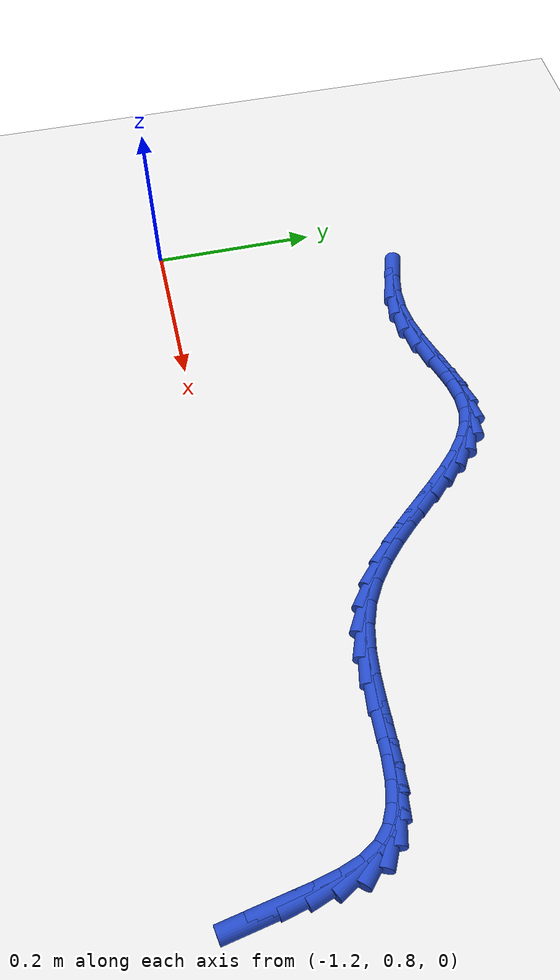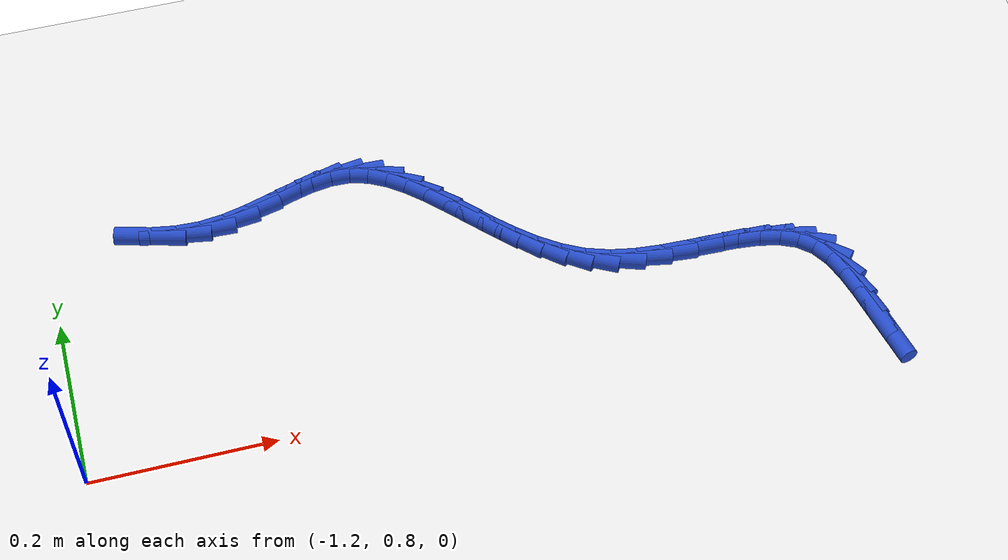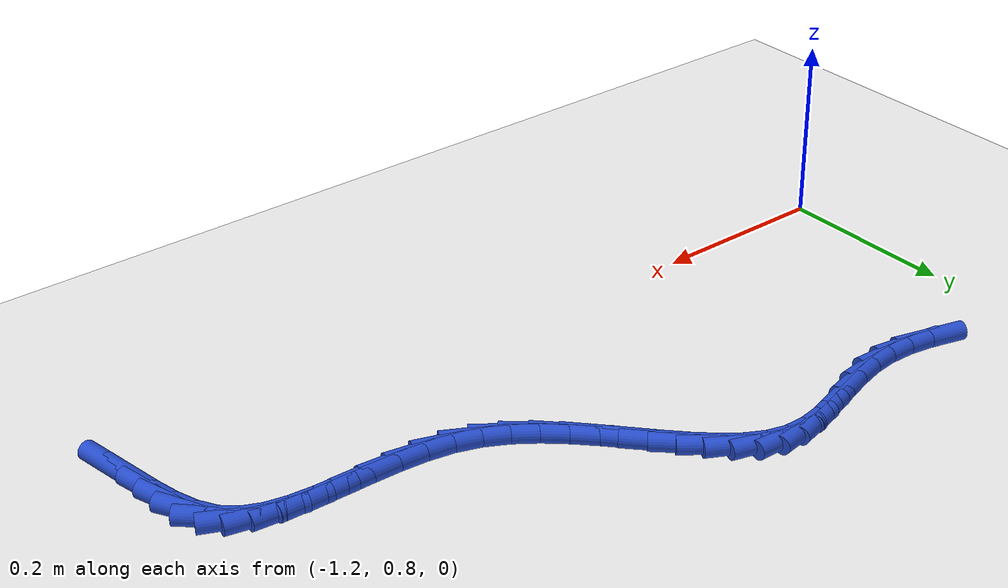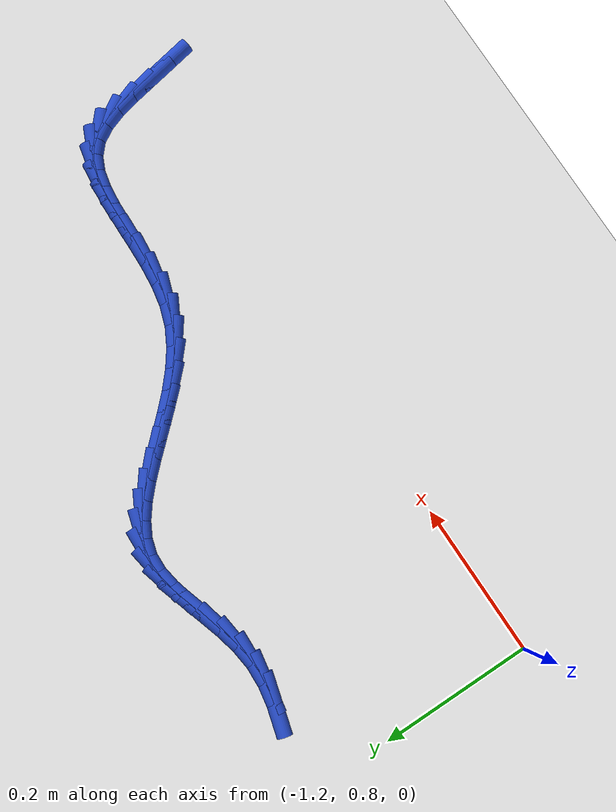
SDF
<sdf version="1.6">
 <world name="default">
  <model name="ground_plane">
   <static>1</static>
   <link name="link">
    <collision name="collision">
     <geometry><plane><normal>0 0 1</normal><size>100 100</size></plane></geometry>
     <surface><friction><ode><mu>100</mu><mu2>50</mu2></ode></friction></surface>
    </collision>
    <visual name="visual">
     <cast_shadows>0</cast_shadows>
     <geometry><plane><normal>0 0 1</normal><size>100 100</size></plane></geometry>
     <material>
      <script><uri>file://media/materials/scripts/gazebo.material</uri><name>Gazebo/WhiteGlow</name></script>
     </material>
    </visual>
   </link>
  </model>
  <model name="line">
   <link name="link_33">
    <pose>-0.34288964337292827 0.7623112245868207 0.01 0 1.57 -1.3906862748614424</pose>
    <collision name="collision">
     <geometry><cylinder><radius>0.01</radius><length>0.08</length></cylinder></geometry>
    </collision>
    <visual name="visual">
     <material>
      <script><name>Gazebo/Blue</name><uri>file://media/materials/scripts/gazebo.material</uri></script>
     </material>
     <geometry><cylinder><radius>0.01</radius><length>0.08</length></cylinder></geometry>
    </visual>
   </link>
   <link name="link_34">
    <pose>-0.3480462112570807 0.7906310646843723 0.01 0 1.57 -1.3924642275761425</pose>
    <collision name="collision">
     <geometry><cylinder><radius>0.01</radius><length>0.08</length></cylinder></geometry>
    </collision>
    <visual name="visual">
     <material>
      <script><name>Gazebo/Blue</name><uri>file://media/materials/scripts/gazebo.material</uri></script>
     </material>
     <geometry><cylinder><radius>0.01</radius><length>0.08</length></cylinder></geometry>
    </visual>
   </link>
   <link name="link_35">
    <pose>-0.3530417143281931 0.8183458409422699 0.01 0 1.57 -1.345507917384217</pose>
    <collision name="collision">
     <geometry><cylinder><radius>0.01</radius><length>0.08</length></cylinder></geometry>
    </collision>
    <visual name="visual">
     <material>
      <script><name>Gazebo/Blue</name><uri>file://media/materials/scripts/gazebo.material</uri></script>
     </material>
     <geometry><cylinder><radius>0.01</radius><length>0.08</length></cylinder></geometry>
    </visual>
   </link>
   <link name="link_36">
    <pose>-0.35899050592612103 0.8443028177778186 0.01 0 1.57 -1.236048659714106</pose>
    <collision name="collision">
     <geometry><cylinder><radius>0.01</radius><length>0.08</length></cylinder></geometry>
    </collision>
    <visual name="visual">
     <material>
      <script><name>Gazebo/Blue</name><uri>file://media/materials/scripts/gazebo.material</uri></script>
     </material>
     <geometry><cylinder><radius>0.01</radius><length>0.08</length></cylinder></geometry>
    </visual>
   </link>
   <link name="link_37">
    <pose>-0.3670069393907203 0.8673492596083233 0.01 0 1.57 -1.0378263958449676</pose>
    <collision name="collision">
     <geometry><cylinder><radius>0.01</radius><length>0.08</length></cylinder></geometry>
    </collision>
    <visual name="visual">
     <material>
      <script><name>Gazebo/Blue</name><uri>file://media/materials/scripts/gazebo.material</uri></script>
     </material>
     <geometry><cylinder><radius>0.01</radius><length>0.08</length></cylinder></geometry>
    </visual>
   </link>
   <link name="link_38">
    <pose>-0.37820536806184657 0.8863324308510889 0.01 0 1.57 -0.7340887255613944</pose>
    <collision name="collision">
     <geometry><cylinder><radius>0.01</radius><length>0.08</length></cylinder></geometry>
    </collision>
    <visual name="visual">
     <material>
      <script><name>Gazebo/Blue</name><uri>file://media/materials/scripts/gazebo.material</uri></script>
     </material>
     <geometry><cylinder><radius>0.01</radius><length>0.08</length></cylinder></geometry>
    </visual>
   </link>
   <link name="link_39">
    <pose>-0.39359885136773926 0.9002220925349297 0.01 0 1.57 -0.4350780117372672</pose>
    <collision name="collision">
     <geometry><cylinder><radius>0.01</radius><length>0.08</length></cylinder></geometry>
    </collision>
    <visual name="visual">
     <material>
      <script><name>Gazebo/Blue</name><uri>file://media/materials/scripts/gazebo.material</uri></script>
     </material>
     <geometry><cylinder><radius>0.01</radius><length>0.08</length></cylinder></geometry>
    </visual>
   </link>
   <link name="link_40">
    <pose>-0.4131196720460522 0.9092950090443633 0.01 0 1.57 -0.22816482422314488</pose>
    <collision name="collision">
     <geometry><cylinder><radius>0.01</radius><length>0.08</length></cylinder></geometry>
    </collision>
    <visual name="visual">
     <material>
      <script><name>Gazebo/Blue</name><uri>file://media/materials/scripts/gazebo.material</uri></script>
     </material>
     <geometry><cylinder><radius>0.01</radius><length>0.08</length></cylinder></geometry>
    </visual>
   </link>
   <link name="link_41">
    <pose>-0.436046194566393 0.9146187402891426 0.01 0 1.57 -0.10326282881329502</pose>
    <collision name="collision">
     <geometry><cylinder><radius>0.01</radius><length>0.08</length></cylinder></geometry>
    </collision>
    <visual name="visual">
     <material>
      <script><name>Gazebo/Blue</name><uri>file://media/materials/scripts/gazebo.material</uri></script>
     </material>
     <geometry><cylinder><radius>0.01</radius><length>0.08</length></cylinder></geometry>
    </visual>
   </link>
   <link name="link_42">
    <pose>-0.4616476769722693 0.9172718587494932 0.01 0 1.57 -0.03850160956379193</pose>
    <collision name="collision">
     <geometry><cylinder><radius>0.01</radius><length>0.08</length></cylinder></geometry>
    </collision>
    <visual name="visual">
     <material>
      <script><name>Gazebo/Blue</name><uri>file://media/materials/scripts/gazebo.material</uri></script>
     </material>
     <geometry><cylinder><radius>0.01</radius><length>0.08</length></cylinder></geometry>
    </visual>
   </link>
   <link name="link_43">
    <pose>-0.4891933773071892 0.9183329369056399 0.01 0 1.57 -0.019038937644648587</pose>
    <collision name="collision">
     <geometry><cylinder><radius>0.01</radius><length>0.08</length></cylinder></geometry>
    </collision>
    <visual name="visual">
     <material>
      <script><name>Gazebo/Blue</name><uri>file://media/materials/scripts/gazebo.material</uri></script>
     </material>
     <geometry><cylinder><radius>0.01</radius><length>0.08</length></cylinder></geometry>
    </visual>
   </link>
   <link name="link_44">
    <pose>-0.517952553614661 0.9188805472378087 0.01 0 1.57 -0.03803371212145451</pose>
    <collision name="collision">
     <geometry><cylinder><radius>0.01</radius><length>0.08</length></cylinder></geometry>
    </collision>
    <visual name="visual">
     <material>
      <script><name>Gazebo/Blue</name><uri>file://media/materials/scripts/gazebo.material</uri></script>
     </material>
     <geometry><cylinder><radius>0.01</radius><length>0.08</length></cylinder></geometry>
    </visual>
   </link>
   <link name="link_45">
    <pose>-0.5471944639381919 0.9199932622262242 0.01 0 1.57 -0.09478313095866771</pose>
    <collision name="collision">
     <geometry><cylinder><radius>0.01</radius><length>0.08</length></cylinder></geometry>
    </collision>
    <visual name="visual">
     <material>
      <script><name>Gazebo/Blue</name><uri>file://media/materials/scripts/gazebo.material</uri></script>
     </material>
     <geometry><cylinder><radius>0.01</radius><length>0.08</length></cylinder></geometry>
    </visual>
   </link>
   <link name="link_46">
    <pose>-0.5761883663212908 0.9227496543511126 0.01 0 1.57 -0.19312265586813135</pose>
    <collision name="collision">
     <geometry><cylinder><radius>0.01</radius><length>0.08</length></cylinder></geometry>
    </collision>
    <visual name="visual">
     <material>
      <script><name>Gazebo/Blue</name><uri>file://media/materials/scripts/gazebo.material</uri></script>
     </material>
     <geometry><cylinder><radius>0.01</radius><length>0.08</length></cylinder></geometry>
    </visual>
   </link>
   <link name="link_47">
    <pose>-0.6042035188074648 0.9282282960926986 0.01 0 1.57 -0.3383980068140878</pose>
    <collision name="collision">
     <geometry><cylinder><radius>0.01</radius><length>0.08</length></cylinder></geometry>
    </collision>
    <visual name="visual">
     <material>
      <script><name>Gazebo/Blue</name><uri>file://media/materials/scripts/gazebo.material</uri></script>
     </material>
     <geometry><cylinder><radius>0.01</radius><length>0.08</length></cylinder></geometry>
    </visual>
   </link>
   <link name="link_48">
    <pose>-0.6305188542791111 0.9374895954475316 0.01 0 1.57 -0.5010439191679373</pose>
    <collision name="collision">
     <geometry><cylinder><radius>0.01</radius><length>0.08</length></cylinder></geometry>
    </collision>
    <visual name="visual">
     <material>
      <script><name>Gazebo/Blue</name><uri>file://media/materials/scripts/gazebo.material</uri></script>
     </material>
     <geometry><cylinder><radius>0.01</radius><length>0.08</length></cylinder></geometry>
    </visual>
   </link>
   <link name="link_49">
    <pose>-0.6548332208401827 0.9508055707267604 0.01 0 1.57 -0.6329286771304352</pose>
    <collision name="collision">
     <geometry><cylinder><radius>0.01</radius><length>0.08</length></cylinder></geometry>
    </collision>
    <visual name="visual">
     <material>
      <script><name>Gazebo/Blue</name><uri>file://media/materials/scripts/gazebo.material</uri></script>
     </material>
     <geometry><cylinder><radius>0.01</radius><length>0.08</length></cylinder></geometry>
    </visual>
   </link>
   <link name="link_50">
    <pose>-0.6774177401152314 0.96737379826443 0.01 0 1.57 -0.7299570894741478</pose>
    <collision name="collision">
     <geometry><cylinder><radius>0.01</radius><length>0.08</length></cylinder></geometry>
    </collision>
    <visual name="visual">
     <material>
      <script><name>Gazebo/Blue</name><uri>file://media/materials/scripts/gazebo.material</uri></script>
     </material>
     <geometry><cylinder><radius>0.01</radius><length>0.08</length></cylinder></geometry>
    </visual>
   </link>
   <link name="link_51">
    <pose>-0.6985845985600144 0.9863147552857819 0.01 0 1.57 -0.7946033513987176</pose>
    <collision name="collision">
     <geometry><cylinder><radius>0.01</radius><length>0.08</length></cylinder></geometry>
    </collision>
    <visual name="visual">
     <material>
      <script><name>Gazebo/Blue</name><uri>file://media/materials/scripts/gazebo.material</uri></script>
     </material>
     <geometry><cylinder><radius>0.01</radius><length>0.08</length></cylinder></geometry>
    </visual>
   </link>
   <link name="link_52">
    <pose>-0.7186459826302888 1.0067489190160561 0.01 0 1.57 -0.8295146238784223</pose>
    <collision name="collision">
     <geometry><cylinder><radius>0.01</radius><length>0.08</length></cylinder></geometry>
    </collision>
    <visual name="visual">
     <material>
      <script><name>Gazebo/Blue</name><uri>file://media/materials/scripts/gazebo.material</uri></script>
     </material>
     <geometry><cylinder><radius>0.01</radius><length>0.08</length></cylinder></geometry>
    </visual>
   </link>
   <link name="link_53">
    <pose>-0.7379140787818119 1.0277967666804937 0.01 0 1.57 -0.8357741159360251</pose>
    <collision name="collision">
     <geometry><cylinder><radius>0.01</radius><length>0.08</length></cylinder></geometry>
    </collision>
    <visual name="visual">
     <material>
      <script><name>Gazebo/Blue</name><uri>file://media/materials/scripts/gazebo.material</uri></script>
     </material>
     <geometry><cylinder><radius>0.01</radius><length>0.08</length></cylinder></geometry>
    </visual>
   </link>
   <link name="link_54">
    <pose>-0.7567010734703409 1.0485787755043354 0.01 0 1.57 -0.8120178000085374</pose>
    <collision name="collision">
     <geometry><cylinder><radius>0.01</radius><length>0.08</length></cylinder></geometry>
    </collision>
    <visual name="visual">
     <material>
      <script><name>Gazebo/Blue</name><uri>file://media/materials/scripts/gazebo.material</uri></script>
     </material>
     <geometry><cylinder><radius>0.01</radius><length>0.08</length></cylinder></geometry>
    </visual>
   </link>
   <link name="link_55">
    <pose>-0.7753191531516332 1.068215422712822 0.01 0 1.57 -0.7538032395687636</pose>
    <collision name="collision">
     <geometry><cylinder><radius>0.01</radius><length>0.08</length></cylinder></geometry>
    </collision>
    <visual name="visual">
     <material>
      <script><name>Gazebo/Blue</name><uri>file://media/materials/scripts/gazebo.material</uri></script>
     </material>
     <geometry><cylinder><radius>0.01</radius><length>0.08</length></cylinder></geometry>
    </visual>
   </link>
   <link name="link_56">
    <pose>-0.7940805042814458 1.085827185531194 0.01 0 1.57 -0.653245426393471</pose>
    <collision name="collision">
     <geometry><cylinder><radius>0.01</radius><length>0.08</length></cylinder></geometry>
    </collision>
    <visual name="visual">
     <material>
      <script><name>Gazebo/Blue</name><uri>file://media/materials/scripts/gazebo.material</uri></script>
     </material>
     <geometry><cylinder><radius>0.01</radius><length>0.08</length></cylinder></geometry>
    </visual>
   </link>
   <link name="link_57">
    <pose>-0.813297313315536 1.1005345411846925 0.01 0 1.57 -0.5002261512844658</pose>
    <collision name="collision">
     <geometry><cylinder><radius>0.01</radius><length>0.08</length></cylinder></geometry>
    </collision>
    <visual name="visual">
     <material>
      <script><name>Gazebo/Blue</name><uri>file://media/materials/scripts/gazebo.material</uri></script>
     </material>
     <geometry><cylinder><radius>0.01</radius><length>0.08</length></cylinder></geometry>
    </visual>
   </link>
   <link name="link_58">
    <pose>-0.833281766709661 1.1114579668985582 0.01 0 1.57 -0.2888715178001583</pose>
    <collision name="collision">
     <geometry><cylinder><radius>0.01</radius><length>0.08</length></cylinder></geometry>
    </collision>
    <visual name="visual">
     <material>
      <script><name>Gazebo/Blue</name><uri>file://media/materials/scripts/gazebo.material</uri></script>
     </material>
     <geometry><cylinder><radius>0.01</radius><length>0.08</length></cylinder></geometry>
    </visual>
   </link>
   <link name="link_59">
    <pose>-0.8543460509195784 1.1177179398980324 0.01 0 1.57 -0.03962480373865633</pose>
    <collision name="collision">
     <geometry><cylinder><radius>0.01</radius><length>0.08</length></cylinder></geometry>
    </collision>
    <visual name="visual">
     <material>
      <script><name>Gazebo/Blue</name><uri>file://media/materials/scripts/gazebo.material</uri></script>
     </material>
     <geometry><cylinder><radius>0.01</radius><length>0.08</length></cylinder></geometry>
    </visual>
   </link>
   <link name="link_60">
    <pose>-0.8767658021198552 1.1186067833863966 0.01 0 1.57 0.1543996903617715</pose>
    <collision name="collision">
     <geometry><cylinder><radius>0.01</radius><length>0.08</length></cylinder></geometry>
    </collision>
    <visual name="visual">
     <material>
      <script><name>Gazebo/Blue</name><uri>file://media/materials/scripts/gazebo.material</uri></script>
     </material>
     <geometry><cylinder><radius>0.01</radius><length>0.08</length></cylinder></geometry>
    </visual>
   </link>
   <link name="link_61">
    <pose>-0.9004984145974323 1.114913076865174 0.01 0 1.57 0.26410611192535016</pose>
    <collision name="collision">
     <geometry><cylinder><radius>0.01</radius><length>0.08</length></cylinder></geometry>
    </collision>
    <visual name="visual">
     <material>
      <script><name>Gazebo/Blue</name><uri>file://media/materials/scripts/gazebo.material</uri></script>
     </material>
     <geometry><cylinder><radius>0.01</radius><length>0.08</length></cylinder></geometry>
    </visual>
   </link>
   <link name="link_62">
    <pose>-0.9253373714373765 1.1081960500164336 0.01 0 1.57 0.3075432165854948</pose>
    <collision name="collision">
     <geometry><cylinder><radius>0.01</radius><length>0.08</length></cylinder></geometry>
    </collision>
    <visual name="visual">
     <material>
      <script><name>Gazebo/Blue</name><uri>file://media/materials/scripts/gazebo.material</uri></script>
     </material>
     <geometry><cylinder><radius>0.01</radius><length>0.08</length></cylinder></geometry>
    </visual>
   </link>
   <link name="link_63">
    <pose>-0.9510747995793934 1.1000213086189083 0.01 0 1.57 0.2962557683704399</pose>
    <collision name="collision">
     <geometry><cylinder><radius>0.01</radius><length>0.08</length></cylinder></geometry>
    </collision>
    <visual name="visual">
     <material>
      <script><name>Gazebo/Blue</name><uri>file://media/materials/scripts/gazebo.material</uri></script>
     </material>
     <geometry><cylinder><radius>0.01</radius><length>0.08</length></cylinder></geometry>
    </visual>
   </link>
   <link name="link_64">
    <pose>-0.9775028259631882 1.0919544584513334 0.01 0 1.57 0.2332518977893358</pose>
    <collision name="collision">
     <geometry><cylinder><radius>0.01</radius><length>0.08</length></cylinder></geometry>
    </collision>
    <visual name="visual">
     <material>
      <script><name>Gazebo/Blue</name><uri>file://media/materials/scripts/gazebo.material</uri></script>
     </material>
     <geometry><cylinder><radius>0.01</radius><length>0.08</length></cylinder></geometry>
    </visual>
   </link>
   <link name="link_65">
    <pose>-1.004413577528466 1.0855611052924432 0.01 0 1.57 0.11552185965410673</pose>
    <collision name="collision">
     <geometry><cylinder><radius>0.01</radius><length>0.08</length></cylinder></geometry>
    </collision>
    <visual name="visual">
     <material>
      <script><name>Gazebo/Blue</name><uri>file://media/materials/scripts/gazebo.material</uri></script>
     </material>
     <geometry><cylinder><radius>0.01</radius><length>0.08</length></cylinder></geometry>
    </visual>
   </link>
   <link name="link_66">
    <pose>-1.0315991913979132 1.0824065271911665 0.01 0 1.57 -0.04093118501083047</pose>
    <collision name="collision">
     <geometry><cylinder><radius>0.01</radius><length>0.08</length></cylinder></geometry>
    </collision>
    <visual name="visual">
     <material>
      <script><name>Gazebo/Blue</name><uri>file://media/materials/scripts/gazebo.material</uri></script>
     </material>
     <geometry><cylinder><radius>0.01</radius><length>0.08</length></cylinder></geometry>
    </visual>
   </link>
   <link name="link_67">
    <pose>-1.0588683561117072 1.0835233101587076 0.01 0 1.57 -0.1747596472735226</pose>
    <collision name="collision">
     <geometry><cylinder><radius>0.01</radius><length>0.08</length></cylinder></geometry>
    </collision>
    <visual name="visual">
     <material>
      <script><name>Gazebo/Blue</name><uri>file://media/materials/scripts/gazebo.material</uri></script>
     </material>
     <geometry><cylinder><radius>0.01</radius><length>0.08</length></cylinder></geometry>
    </visual>
   </link>
   <link name="link_68">
    <pose>-1.0860799783809567 1.08832781489991 0.01 0 1.57 -0.274275102753878</pose>
    <collision name="collision">
     <geometry><cylinder><radius>0.01</radius><length>0.08</length></cylinder></geometry>
    </collision>
    <visual name="visual">
     <material>
      <script><name>Gazebo/Blue</name><uri>file://media/materials/scripts/gazebo.material</uri></script>
     </material>
     <geometry><cylinder><radius>0.01</radius><length>0.08</length></cylinder></geometry>
    </visual>
   </link>
  </model>
 </world>
</sdf>
